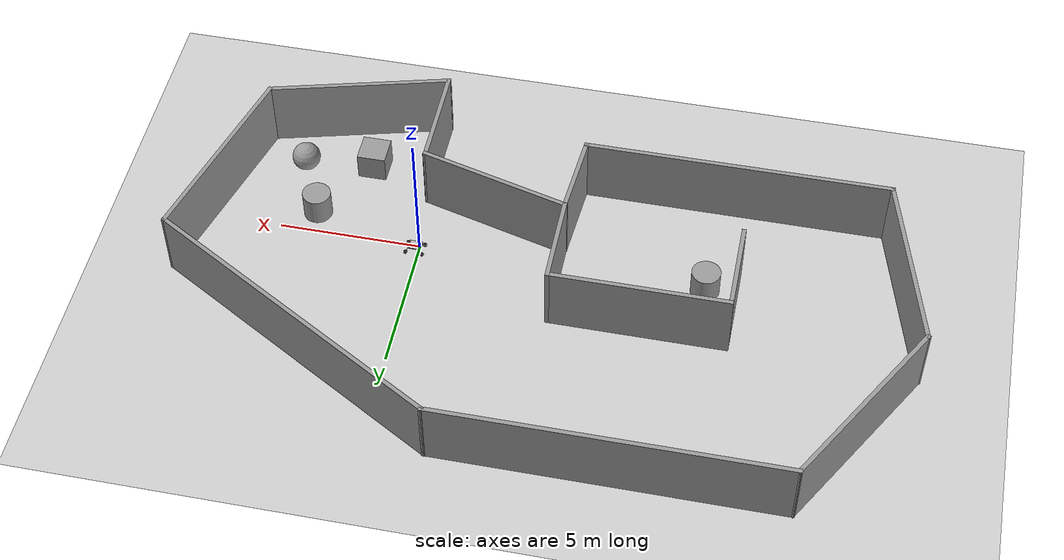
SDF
<sdf version="1.7">
 <world name="default">
  <light name="sun" type="directional">
   <pose>0 0 10 0 -0 0</pose>
   <diffuse>0.8 0.8 0.8 1</diffuse>
   <specular>0.2 0.2 0.2 1</specular>
   <attenuation>
    <range>1000</range>
    <constant>0.9</constant>
    <linear>0.01</linear>
    <quadratic>0.001</quadratic>
   </attenuation>
   <direction>-0.5 0.1 -0.9</direction>
   <spot><inner_angle>0</inner_angle><outer_angle>0</outer_angle><falloff>0</falloff></spot>
  </light>
  <model name="ground_plane">
   <static>1</static>
   <link name="link">
    <collision name="collision">
     <geometry><plane><normal>0 0 1</normal><size>100 100</size></plane></geometry>
     <surface>
      <contact><collide_bitmask>65535</collide_bitmask></contact>
      <friction><ode><mu>100</mu><mu2>50</mu2></ode></friction>
     </surface>
    </collision>
    <visual name="visual">
     <cast_shadows>0</cast_shadows>
     <geometry><plane><normal>0 0 1</normal><size>100 100</size></plane></geometry>
     <material>
      <script><uri>file://media/materials/scripts/gazebo.material</uri><name>Gazebo/Grey</name></script>
     </material>
    </visual>
   </link>
  </model>
  <gravity>0 0 -9.8</gravity>
  <magnetic_field>6e-06 2.3e-05 -4.2e-05</magnetic_field>
  <atmosphere type="adiabatic"/>
  <physics type="ode">
   <max_step_size>0.001</max_step_size>
   <real_time_factor>1</real_time_factor>
   <real_time_update_rate>1000</real_time_update_rate>
  </physics>
  <scene><ambient>0.4 0.4 0.4 1</ambient><background>0.7 0.7 0.7 1</background><shadows>1</shadows></scene>
  <audio><device>default</device></audio>
  <spherical_coordinates>
   <surface_model>EARTH_WGS84</surface_model>
   <latitude_deg>0</latitude_deg>
   <longitude_deg>0</longitude_deg>
   <elevation>0</elevation>
   <heading_deg>0</heading_deg>
  </spherical_coordinates>
  <model name="terratrek_robot">
   <link name="base_link">
    <inertial>
     <pose>0.033333 0 0.515 0 -0 0</pose>
     <mass>0.6</mass>
     <inertia>
      <ixx>0.00406021</ixx>
      <ixy>0</ixy>
      <ixz>-0.0015</ixz>
      <iyy>0.0131217</iyy>
      <iyz>0</iyz>
      <izz>0.0146052</izz>
     </inertia>
    </inertial>
    <collision name="base_link_fixed_joint_lump__chassis_collision">
     <pose>0 0 0.5 0 -0 0</pose>
     <geometry><box><size>0.45 0.255 0.12</size></box></geometry>
    </collision>
    <collision name="base_link_fixed_joint_lump__laser_frame_collision_1">
     <pose>0.2 0 0.59 0 -0 0</pose>
     <geometry><cylinder><length>0.04</length><radius>0.03</radius></cylinder></geometry>
    </collision>
    <visual name="base_link_fixed_joint_lump__chassis_visual">
     <pose>0 0 0.5 0 -0 0</pose>
     <geometry><box><size>0.45 0.255 0.12</size></box></geometry>
    </visual>
    <visual name="base_link_fixed_joint_lump__laser_frame_visual_1">
     <pose>0.2 0 0.59 0 -0 0</pose>
     <geometry><cylinder><length>0.04</length><radius>0.03</radius></cylinder></geometry>
     <material>
      <script><name>Gazebo/Red</name><uri>file://media/materials/scripts/gazebo.material</uri></script>
     </material>
    </visual>
    <sensor name="laser" type="ray">
     <visualize>1</visualize>
     <update_rate>10</update_rate>
     <ray>
      <scan>
       <horizontal>
        <samples>810</samples>
        <min_angle>-2.35619</min_angle>
        <max_angle>2.35619</max_angle>
        <resolution>1</resolution>
       </horizontal>
       <vertical><samples>1</samples><min_angle>0</min_angle><max_angle>0</max_angle></vertical>
      </scan>
      <range><min>0.05</min><max>8</max></range>
     </ray>
     <plugin name="laser_controller" filename="libgazebo_ros_ray_sensor.so">
      <ros><argument>~/out:=scan</argument></ros>
      <output_type>sensor_msgs/LaserScan</output_type>
      <frame_name>laser_frame</frame_name>
     </plugin>
     <pose>0.2 0 0.59 0 -0 0</pose>
    </sensor>
   </link>
   <joint name="left_arm_inner_joint" type="revolute">
    <pose relative_to="base_link">0 0.1425 0.462 0 -0 0</pose>
    <parent>base_link</parent>
    <child>left_arm_inner</child>
    <axis>
     <xyz>0 1 0</xyz>
     <limit><lower>0</lower><upper>0</upper><effort>100</effort><velocity>5</velocity></limit>
     <dynamics>
      <damping>10</damping>
      <friction>0.25</friction>
      <spring_reference>0</spring_reference>
      <spring_stiffness>0</spring_stiffness>
     </dynamics>
    </axis>
   </joint>
   <link name="left_arm_inner">
    <pose relative_to="left_arm_inner_joint">0 0 0 0 -0 0</pose>
    <inertial>
     <pose>0.161467 0.0155 -0.012581 0 -0 0</pose>
     <mass>0.6</mass>
     <inertia>
      <ixx>0.0023073</ixx>
      <ixy>0.000500908</ixy>
      <ixz>-0.00285136</ixz>
      <iyy>0.0266699</iyy>
      <iyz>0.000315727</iyz>
      <izz>0.0245714</izz>
     </inertia>
    </inertial>
    <collision name="left_arm_inner_collision">
     <geometry><box><size>0.4064 0.015 0.045</size></box></geometry>
    </collision>
    <collision name="left_arm_inner_fixed_joint_lump__BL_leg_collision_1">
     <pose>-0.228921 0.03 -0.082742 0 -1.0821 0</pose>
     <geometry><box><size>0.225 0.015 0.015</size></box></geometry>
    </collision>
    <collision name="left_arm_inner_fixed_joint_lump__left_arm_outer_collision_2">
     <pose>0.052 0.016 0 0 -0 0</pose>
     <geometry><box><size>0.4064 0.015 0.045</size></box></geometry>
    </collision>
    <collision name="left_arm_inner_fixed_joint_lump__FL_leg_collision_3">
     <pose>0.280921 0.031 -0.082742 3.14159 -1.0821 3.14159</pose>
     <geometry><box><size>0.225 0.015 0.015</size></box></geometry>
    </collision>
    <visual name="left_arm_inner_visual"><geometry><box><size>0.4064 0.015 0.045</size></box></geometry></visual>
    <visual name="left_arm_inner_fixed_joint_lump__BL_leg_visual_1">
     <pose>-0.228921 0.03 -0.082742 0 -1.0821 0</pose>
     <geometry><box><size>0.225 0.015 0.015</size></box></geometry>
    </visual>
    <visual name="left_arm_inner_fixed_joint_lump__left_arm_outer_visual_2">
     <pose>0.052 0.016 0 0 -0 0</pose>
     <geometry><box><size>0.4064 0.015 0.045</size></box></geometry>
    </visual>
    <visual name="left_arm_inner_fixed_joint_lump__FL_leg_visual_3">
     <pose>0.280921 0.031 -0.082742 3.14159 -1.0821 3.14159</pose>
     <geometry><box><size>0.225 0.015 0.015</size></box></geometry>
    </visual>
   </link>
   <joint name="BL_wheel_joint" type="revolute">
    <pose relative_to="left_arm_inner">-0.27 0.079925 -0.16 -1.5708 -1.0821 0</pose>
    <parent>left_arm_inner</parent>
    <child>BL_wheel</child>
    <axis>
     <xyz>0 0 1</xyz>
     <limit><lower>-1e+16</lower><upper>1e+16</upper></limit>
     <dynamics><spring_reference>0</spring_reference><spring_stiffness>0</spring_stiffness></dynamics>
    </axis>
   </joint>
   <link name="BL_wheel">
    <pose relative_to="BL_wheel_joint">0 0 0 0 -0 0</pose>
    <inertial>
     <mass>0.02</mass>
     <inertia>
      <ixx>2.8293e-05</ixx>
      <ixy>0</ixy>
      <ixz>0</ixz>
      <iyy>2.8293e-05</iyy>
      <iyz>0</iyz>
      <izz>4.03225e-05</izz>
     </inertia>
    </inertial>
    <collision name="BL_wheel_collision"><geometry><sphere><radius>0.0635</radius></sphere></geometry></collision>
    <visual name="BL_wheel_visual">
     <geometry><cylinder><length>0.06985</length><radius>0.0635</radius></cylinder></geometry>
     <material>
      <script><name>Gazebo/Black</name><uri>file://media/materials/scripts/gazebo.material</uri></script>
     </material>
    </visual>
   </link>
   <joint name="FL_wheel_joint" type="revolute">
    <pose relative_to="left_arm_inner">0.322 0.080925 -0.16 1.5708 -1.0821 3.14159</pose>
    <parent>left_arm_inner</parent>
    <child>FL_wheel</child>
    <axis>
     <xyz>0 0 1</xyz>
     <limit><lower>-1e+16</lower><upper>1e+16</upper></limit>
     <dynamics><spring_reference>0</spring_reference><spring_stiffness>0</spring_stiffness></dynamics>
    </axis>
   </joint>
   <link name="FL_wheel">
    <pose relative_to="FL_wheel_joint">0 0 0 0 -0 0</pose>
    <inertial>
     <mass>0.02</mass>
     <inertia>
      <ixx>2.8293e-05</ixx>
      <ixy>0</ixy>
      <ixz>0</ixz>
      <iyy>2.8293e-05</iyy>
      <iyz>0</iyz>
      <izz>4.03225e-05</izz>
     </inertia>
    </inertial>
    <collision name="FL_wheel_collision">
     <geometry><sphere><radius>0.0635</radius></sphere></geometry>
     <surface><friction><ode><mu>0.001</mu></ode></friction></surface>
    </collision>
    <visual name="FL_wheel_visual">
     <geometry><cylinder><length>0.06985</length><radius>0.0635</radius></cylinder></geometry>
     <material>
      <script><name>Gazebo/Black</name><uri>file://media/materials/scripts/gazebo.material</uri></script>
     </material>
    </visual>
   </link>
   <joint name="right_arm_inner_joint" type="revolute">
    <pose relative_to="base_link">0 -0.1425 0.462 0 -0 0</pose>
    <parent>base_link</parent>
    <child>right_arm_inner</child>
    <axis>
     <xyz>0 1 0</xyz>
     <limit><lower>0</lower><upper>0</upper><effort>100</effort><velocity>5</velocity></limit>
     <dynamics>
      <damping>10</damping>
      <friction>0.25</friction>
      <spring_reference>0</spring_reference>
      <spring_stiffness>0</spring_stiffness>
     </dynamics>
    </axis>
   </joint>
   <link name="right_arm_inner">
    <pose relative_to="right_arm_inner_joint">0 0 0 0 -0 0</pose>
    <inertial>
     <pose>0.161467 -0.0155 -0.012581 0 -0 0</pose>
     <mass>0.6</mass>
     <inertia>
      <ixx>0.0023073</ixx>
      <ixy>-0.000500908</ixy>
      <ixz>-0.00285136</ixz>
      <iyy>0.0266699</iyy>
      <iyz>-0.000315727</iyz>
      <izz>0.0245714</izz>
     </inertia>
    </inertial>
    <collision name="right_arm_inner_collision">
     <geometry><box><size>0.4064 0.015 0.045</size></box></geometry>
    </collision>
    <collision name="right_arm_inner_fixed_joint_lump__BR_leg_collision_1">
     <pose>-0.228921 -0.03 -0.082742 0 -1.0821 0</pose>
     <geometry><box><size>0.225 0.015 0.015</size></box></geometry>
    </collision>
    <collision name="right_arm_inner_fixed_joint_lump__right_arm_outer_collision_2">
     <pose>0.052 -0.016 0 0 -0 0</pose>
     <geometry><box><size>0.4064 0.015 0.045</size></box></geometry>
    </collision>
    <collision name="right_arm_inner_fixed_joint_lump__FR_leg_collision_3">
     <pose>0.280921 -0.031 -0.082742 3.14159 -1.0821 3.14159</pose>
     <geometry><box><size>0.225 0.015 0.015</size></box></geometry>
    </collision>
    <visual name="right_arm_inner_visual"><geometry><box><size>0.4064 0.015 0.045</size></box></geometry></visual>
    <visual name="right_arm_inner_fixed_joint_lump__BR_leg_visual_1">
     <pose>-0.228921 -0.03 -0.082742 0 -1.0821 0</pose>
     <geometry><box><size>0.225 0.015 0.015</size></box></geometry>
    </visual>
    <visual name="right_arm_inner_fixed_joint_lump__right_arm_outer_visual_2">
     <pose>0.052 -0.016 0 0 -0 0</pose>
     <geometry><box><size>0.4064 0.015 0.045</size></box></geometry>
    </visual>
    <visual name="right_arm_inner_fixed_joint_lump__FR_leg_visual_3">
     <pose>0.280921 -0.031 -0.082742 3.14159 -1.0821 3.14159</pose>
     <geometry><box><size>0.225 0.015 0.015</size></box></geometry>
    </visual>
   </link>
   <joint name="BR_wheel_joint" type="revolute">
    <pose relative_to="right_arm_inner">-0.27 -0.079925 -0.16 -1.5708 -1.0821 0</pose>
    <parent>right_arm_inner</parent>
    <child>BR_wheel</child>
    <axis>
     <xyz>0 0 1</xyz>
     <limit><lower>-1e+16</lower><upper>1e+16</upper></limit>
     <dynamics><spring_reference>0</spring_reference><spring_stiffness>0</spring_stiffness></dynamics>
    </axis>
   </joint>
   <link name="BR_wheel">
    <pose relative_to="BR_wheel_joint">0 0 0 0 -0 0</pose>
    <inertial>
     <mass>0.02</mass>
     <inertia>
      <ixx>2.8293e-05</ixx>
      <ixy>0</ixy>
      <ixz>0</ixz>
      <iyy>2.8293e-05</iyy>
      <iyz>0</iyz>
      <izz>4.03225e-05</izz>
     </inertia>
    </inertial>
    <collision name="BR_wheel_collision"><geometry><sphere><radius>0.0635</radius></sphere></geometry></collision>
    <visual name="BR_wheel_visual">
     <geometry><cylinder><length>0.06985</length><radius>0.0635</radius></cylinder></geometry>
     <material>
      <script><name>Gazebo/Black</name><uri>file://media/materials/scripts/gazebo.material</uri></script>
     </material>
    </visual>
   </link>
   <joint name="FR_wheel_joint" type="revolute">
    <pose relative_to="right_arm_inner">0.322 -0.080925 -0.16 1.5708 -1.0821 3.14159</pose>
    <parent>right_arm_inner</parent>
    <child>FR_wheel</child>
    <axis>
     <xyz>0 0 1</xyz>
     <limit><lower>-1e+16</lower><upper>1e+16</upper></limit>
     <dynamics><spring_reference>0</spring_reference><spring_stiffness>0</spring_stiffness></dynamics>
    </axis>
   </joint>
   <link name="FR_wheel">
    <pose relative_to="FR_wheel_joint">0 0 0 0 -0 0</pose>
    <inertial>
     <mass>0.02</mass>
     <inertia>
      <ixx>2.8293e-05</ixx>
      <ixy>0</ixy>
      <ixz>0</ixz>
      <iyy>2.8293e-05</iyy>
      <iyz>0</iyz>
      <izz>4.03225e-05</izz>
     </inertia>
    </inertial>
    <collision name="FR_wheel_collision">
     <geometry><sphere><radius>0.0635</radius></sphere></geometry>
     <surface><friction><ode><mu>0.001</mu></ode></friction></surface>
    </collision>
    <visual name="FR_wheel_visual">
     <geometry><cylinder><length>0.06985</length><radius>0.0635</radius></cylinder></geometry>
     <material>
      <script><name>Gazebo/Black</name><uri>file://media/materials/scripts/gazebo.material</uri></script>
     </material>
    </visual>
   </link>
   <plugin name="joint_states" filename="libgazebo_ros_joint_state_publisher.so">
    <ros><remapping>~/out:=joint_states</remapping></ros>
    <update_rate>30</update_rate>
    <joint_name>right_arm_inner_joint</joint_name>
    <joint_name>right_arm_outer_joint</joint_name>
    <joint_name>left_arm_inner_joint</joint_name>
    <joint_name>left_arm_outer_joint</joint_name>
    <joint_name>BL_wheel_joint</joint_name>
    <joint_name>BR_wheel_joint</joint_name>
    <joint_name>FL_wheel_joint</joint_name>
    <joint_name>FR_wheel_joint</joint_name>
   </plugin>
   <static>0</static>
   <plugin name="skid_steer_drive" filename="libgazebo_ros2_control.so">
    <parameters>/home/carter/ros2_ws/install/terratrek_robot/share/terratrek_robot/config/my_controllers.yaml</parameters>
   </plugin>
   <pose>0.107155 0.131597 -0.238502 2e-06 4e-06 -0.024824</pose>
  </model>
  <model name="unit_box">
   <pose>2.42757 -3.33731 0.499995 0 -1e-05 0</pose>
   <link name="link">
    <inertial>
     <mass>1</mass>
     <inertia>
      <ixx>0.166667</ixx>
      <ixy>0</ixy>
      <ixz>0</ixz>
      <iyy>0.166667</iyy>
      <iyz>0</iyz>
      <izz>0.166667</izz>
     </inertia>
    </inertial>
    <collision name="collision"><geometry><box><size>1 1 1</size></box></geometry></collision>
    <visual name="visual">
     <geometry><box><size>1 1 1</size></box></geometry>
     <material>
      <script><name>Gazebo/Grey</name><uri>file://media/materials/scripts/gazebo.material</uri></script>
     </material>
    </visual>
   </link>
  </model>
  <model name="unit_sphere">
   <pose>4.85987 -2.9673 0.5 0 -0 0</pose>
   <link name="link">
    <inertial>
     <mass>1</mass>
     <inertia><ixx>0.1</ixx><ixy>0</ixy><ixz>0</ixz><iyy>0.1</iyy><iyz>0</iyz><izz>0.1</izz></inertia>
    </inertial>
    <collision name="collision"><geometry><sphere><radius>0.5</radius></sphere></geometry></collision>
    <visual name="visual">
     <geometry><sphere><radius>0.5</radius></sphere></geometry>
     <material>
      <script><name>Gazebo/Grey</name><uri>file://media/materials/scripts/gazebo.material</uri></script>
     </material>
    </visual>
   </link>
  </model>
  <model name="unit_cylinder">
   <pose>3.88551 -0.883468 0.499998 3e-06 -4e-06 0</pose>
   <link name="link">
    <inertial>
     <mass>1</mass>
     <inertia><ixx>0.145833</ixx><ixy>0</ixy><ixz>0</ixz><iyy>0.145833</iyy><iyz>0</iyz><izz>0.125</izz></inertia>
    </inertial>
    <collision name="collision">
     <geometry><cylinder><radius>0.5</radius><length>1</length></cylinder></geometry>
    </collision>
    <visual name="visual">
     <geometry><cylinder><radius>0.5</radius><length>1</length></cylinder></geometry>
     <material>
      <script><name>Gazebo/Grey</name><uri>file://media/materials/scripts/gazebo.material</uri></script>
     </material>
    </visual>
   </link>
  </model>
  <model name="Building1">
   <pose>-4.65446 1.34316 0 0 -0 0</pose>
   <link name="Wall_0">
    <collision name="Wall_0_Collision">
     <geometry><box><size>5.5 0.15 2.5</size></box></geometry>
     <pose>0 0 1.25 0 -0 0</pose>
    </collision>
    <visual name="Wall_0_Visual">
     <pose>0 0 1.25 0 -0 0</pose>
     <geometry><box><size>5.5 0.15 2.5</size></box></geometry>
     <material>
      <script><uri>file://media/materials/scripts/gazebo.material</uri><name>Gazebo/Grey</name></script>
      <ambient>1 1 1 1</ambient>
     </material>
     <meta><layer>0</layer></meta>
    </visual>
    <pose>2.27831 -2.8055 0 0 -0 -0.261799</pose>
   </link>
   <link name="Wall_1">
    <collision name="Wall_1_Collision">
     <geometry><box><size>3.75 0.15 2.5</size></box></geometry>
     <pose>0 0 1.25 0 -0 0</pose>
    </collision>
    <visual name="Wall_1_Visual">
     <pose>0 0 1.25 0 -0 0</pose>
     <geometry><box><size>3.75 0.15 2.5</size></box></geometry>
     <material>
      <script><uri>file://media/materials/scripts/gazebo.material</uri><name>Gazebo/Grey</name></script>
      <ambient>1 1 1 1</ambient>
     </material>
     <meta><layer>0</layer></meta>
    </visual>
    <pose>4.86216 -5.29784 0 0 -0 -1.5708</pose>
   </link>
   <link name="Wall_11">
    <collision name="Wall_11_Collision">
     <geometry><box><size>3.25 0.15 2.5</size></box></geometry>
     <pose>0 0 1.25 0 -0 0</pose>
    </collision>
    <visual name="Wall_11_Visual">
     <pose>0 0 1.25 0 -0 0</pose>
     <geometry><box><size>3.25 0.15 2.5</size></box></geometry>
     <material>
      <script><uri>file://media/materials/scripts/gazebo.material</uri><name>Gazebo/Grey</name></script>
      <ambient>1 1 1 1</ambient>
     </material>
     <meta><layer>0</layer></meta>
    </visual>
    <pose>-0.305543 -0.563163 0 0 -0 1.5708</pose>
   </link>
   <link name="Wall_12">
    <collision name="Wall_12_Collision">
     <geometry><box><size>6.25 0.15 2.5</size></box></geometry>
     <pose>0 0 1.25 0 -0 0</pose>
    </collision>
    <visual name="Wall_12_Visual">
     <pose>0 0 1.25 0 -0 0</pose>
     <geometry><box><size>6.25 0.15 2.5</size></box></geometry>
     <material>
      <script><uri>file://media/materials/scripts/gazebo.material</uri><name>Gazebo/Grey</name></script>
      <ambient>1 1 1 1</ambient>
     </material>
     <meta><layer>0</layer></meta>
    </visual>
    <pose>-3.35554 0.986837 0 0 -0 3.14159</pose>
   </link>
   <link name="Wall_13">
    <collision name="Wall_13_Collision">
     <geometry><box><size>3.25 0.15 2.5</size></box></geometry>
     <pose>0 0 1.25 0 -0 0</pose>
    </collision>
    <visual name="Wall_13_Visual">
     <pose>0 0 1.25 0 -0 0</pose>
     <geometry><box><size>3.25 0.15 2.5</size></box></geometry>
     <material>
      <script><uri>file://media/materials/scripts/gazebo.material</uri><name>Gazebo/Grey</name></script>
      <ambient>1 1 1 1</ambient>
     </material>
     <meta><layer>0</layer></meta>
    </visual>
    <pose>-6.40554 -0.563163 0 0 -0 -1.5708</pose>
   </link>
   <link name="Wall_2">
    <collision name="Wall_2_Collision">
     <geometry><box><size>6.5 0.15 2.5</size></box></geometry>
     <pose>0 0 1.25 0 -0 0</pose>
    </collision>
    <visual name="Wall_2_Visual">
     <pose>0 0 1.25 0 -0 0</pose>
     <geometry><box><size>6.5 0.15 2.5</size></box></geometry>
     <material>
      <script><uri>file://media/materials/scripts/gazebo.material</uri><name>Gazebo/Grey</name></script>
      <ambient>1 1 1 1</ambient>
     </material>
     <meta><layer>0</layer></meta>
    </visual>
    <pose>7.92897 -6.27609 0 0 -0 0.261799</pose>
   </link>
   <link name="Wall_3">
    <collision name="Wall_3_Collision">
     <geometry><box><size>7 0.15 2.5</size></box></geometry>
     <pose>0 0 1.25 0 -0 0</pose>
    </collision>
    <visual name="Wall_3_Visual">
     <pose>0 0 1.25 0 -0 0</pose>
     <geometry><box><size>7 0.15 2.5</size></box></geometry>
     <material>
      <script><uri>file://media/materials/scripts/gazebo.material</uri><name>Gazebo/Grey</name></script>
      <ambient>1 1 1 1</ambient>
     </material>
     <meta><layer>0</layer></meta>
    </visual>
    <pose>11.8822 -2.14605 0 0 -0 1.309</pose>
   </link>
   <link name="Wall_4">
    <collision name="Wall_4_Collision">
     <geometry><box><size>12 0.15 2.5</size></box></geometry>
     <pose>0 0 1.25 0 -0 0</pose>
    </collision>
    <visual name="Wall_4_Visual">
     <pose>0 0 1.25 0 -0 0</pose>
     <geometry><box><size>12 0.15 2.5</size></box></geometry>
     <material>
      <script><uri>file://media/materials/scripts/gazebo.material</uri><name>Gazebo/Grey</name></script>
      <ambient>1 1 1 1</ambient>
     </material>
     <meta><layer>0</layer></meta>
    </visual>
    <pose>7.6375 4.12475 0 0 -0 2.61799</pose>
   </link>
   <link name="Wall_5">
    <collision name="Wall_5_Collision">
     <geometry><box><size>12 0.15 2.5</size></box></geometry>
     <pose>0 0 1.25 0 -0 0</pose>
    </collision>
    <visual name="Wall_5_Visual">
     <pose>0 0 1.25 0 -0 0</pose>
     <geometry><box><size>12 0.15 2.5</size></box></geometry>
     <material>
      <script><uri>file://media/materials/scripts/gazebo.material</uri><name>Gazebo/Grey</name></script>
      <ambient>1 1 1 1</ambient>
     </material>
     <meta><layer>0</layer></meta>
    </visual>
    <pose>-3.4187 7.08725 0 0 -0 3.14159</pose>
   </link>
   <link name="Wall_6">
    <collision name="Wall_6_Collision">
     <geometry><box><size>7 0.15 2.5</size></box></geometry>
     <pose>0 0 1.25 0 -0 0</pose>
    </collision>
    <visual name="Wall_6_Visual">
     <pose>0 0 1.25 0 -0 0</pose>
     <geometry><box><size>7 0.15 2.5</size></box></geometry>
     <material>
      <script><uri>file://media/materials/scripts/gazebo.material</uri><name>Gazebo/Grey</name></script>
      <ambient>1 1 1 1</ambient>
     </material>
     <meta><layer>0</layer></meta>
    </visual>
    <pose>-11.0562 4.12111 0 0 -0 -2.0944</pose>
   </link>
   <link name="Wall_7">
    <collision name="Wall_7_Collision">
     <geometry><box><size>6.5 0.15 2.5</size></box></geometry>
     <pose>0 0 1.25 0 -0 0</pose>
    </collision>
    <visual name="Wall_7_Visual">
     <pose>0 0 1.25 0 -0 0</pose>
     <geometry><box><size>6.5 0.15 2.5</size></box></geometry>
     <material>
      <script><uri>file://media/materials/scripts/gazebo.material</uri><name>Gazebo/Grey</name></script>
      <ambient>1 1 1 1</ambient>
     </material>
     <meta><layer>0</layer></meta>
    </visual>
    <pose>-11.947 -1.91184 0 0 -0 -1.309</pose>
   </link>
   <link name="Wall_8">
    <collision name="Wall_8_Collision">
     <geometry><box><size>10.75 0.15 2.5</size></box></geometry>
     <pose>0 0 1.25 0 -0 0</pose>
    </collision>
    <visual name="Wall_8_Visual">
     <pose>0 0 1.25 0 -0 0</pose>
     <geometry><box><size>10.75 0.15 2.5</size></box></geometry>
     <material>
      <script><uri>file://media/materials/scripts/gazebo.material</uri><name>Gazebo/Grey</name></script>
      <ambient>1 1 1 1</ambient>
     </material>
     <meta><layer>0</layer></meta>
    </visual>
    <pose>-5.8252 -4.97865 0 0 -0 0</pose>
   </link>
   <link name="Wall_9">
    <collision name="Wall_9_Collision">
     <geometry><box><size>3.0239 0.15 2.5</size></box></geometry>
     <pose>0 0 1.25 0 -0 0</pose>
    </collision>
    <visual name="Wall_9_Visual">
     <pose>0 0 1.25 0 -0 0</pose>
     <geometry><box><size>3.0239 0.15 2.5</size></box></geometry>
     <material>
      <script><uri>file://media/materials/scripts/gazebo.material</uri><name>Gazebo/Grey</name></script>
      <ambient>1 1 1 1</ambient>
     </material>
     <meta><layer>0</layer></meta>
    </visual>
    <pose>-0.415372 -3.54591 0 0 -0 1.49429</pose>
   </link>
   <static>1</static>
  </model>
  <model name="unit_cylinder_0">
   <pose>-10 -2e-06 0.499998 3e-06 -4e-06 0</pose>
   <link name="link">
    <inertial>
     <mass>1</mass>
     <inertia><ixx>0.145833</ixx><ixy>0</ixy><ixz>0</ixz><iyy>0.145833</iyy><iyz>0</iyz><izz>0.125</izz></inertia>
    </inertial>
    <collision name="collision">
     <geometry><cylinder><radius>0.5</radius><length>1</length></cylinder></geometry>
    </collision>
    <visual name="visual">
     <geometry><cylinder><radius>0.5</radius><length>1</length></cylinder></geometry>
     <material>
      <script><name>Gazebo/Grey</name><uri>file://media/materials/scripts/gazebo.material</uri></script>
     </material>
    </visual>
   </link>
  </model>
 </world>
</sdf>
